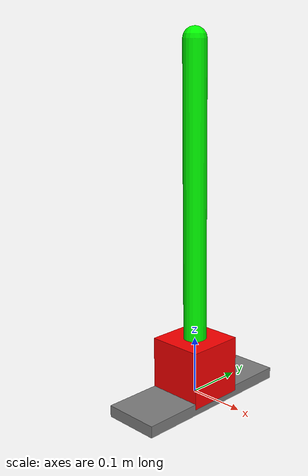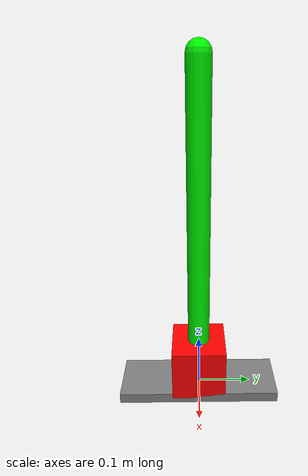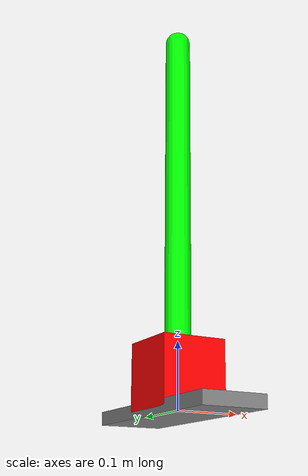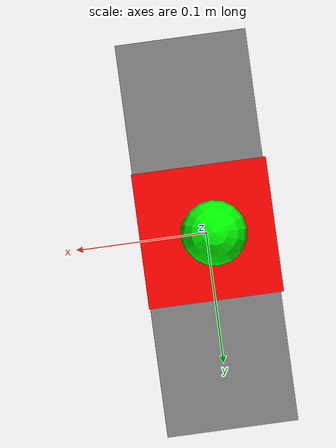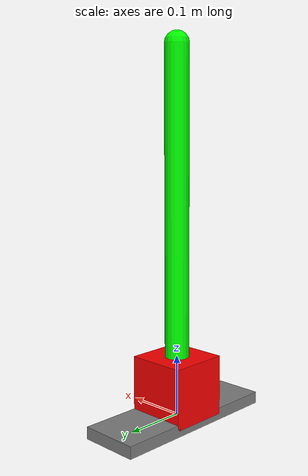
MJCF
<mujoco model="skateboard">
    <default>
        <default class="cartpole">
            <default class="box-slider">
                <joint type="slide" limited="true" stiffness="0" damping="1" frictionloss="0" armature="0" range="-0.1 0.1"/>
                <motor ctrllimited="true" ctrlrange="-1 1" gear="200" />
            </default>
            <default class="cartpole-ball">
                <joint type="ball" limited="true" range="-90 90" damping="3"/>
                <motor ctrllimited="true" ctrlrange="-1 1" gear="50" />
            </default>
        </default>
    </default>

    <worldbody>
        <body name="cartpole" pos="0 0 0" childclass="cartpole">
            <geom name="cartpole" type="box" size="0.05 0.15 0.01"  mass="1"/>
            <freejoint/>
            <!-- y-axis slider for weight transfer -->
            <body name="weight-slider" pos="0 0 0.05">
                <geom name="cartpole-weight" type="box" size="0.05 0.05 0.05"  mass="30.8" rgba="1 0 0 1"/>  <!-- `40.8` for the mass of humanoid -->
                <joint name="slider-y" axis="0 1 0" class="box-slider"/>
                <body name="pole" pos="0 0 0.05">
                    <geom name="pole" type="capsule" mass="10" rgba="0 1 0 1" fromto="0 0 0 0 0 0.5" size="0.02"/>
                    <joint name="cartpole-ball" axis="1 0 0" class="cartpole-ball" type="hinge"/>
                </body>
            </body>
        </body>
    </worldbody>
    <actuator>
    <!-- Control the y-translation of the cube for weight shift -->
    <motor name="slider-y" joint="slider-y" class="box-slider" />
    <!-- Control the rotation of the pole -->
    <motor name="cartpole-ball" joint="cartpole-ball" class="cartpole-ball" />

  </actuator>
</mujoco>
